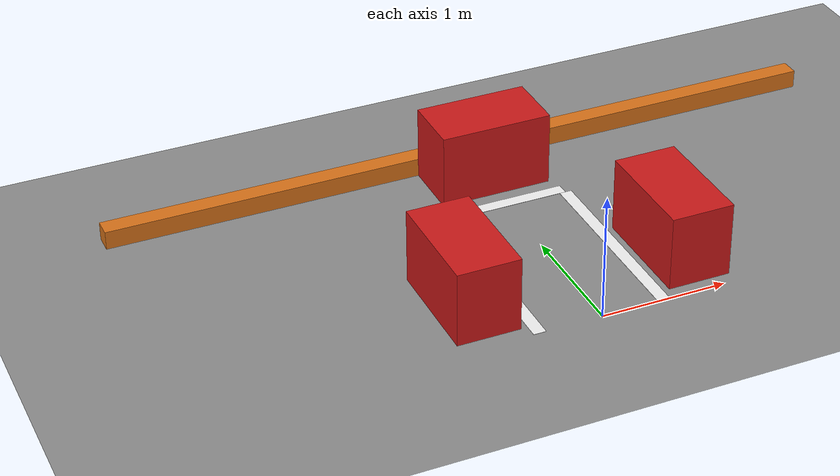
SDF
<?xml version="1.0" ?>
<sdf version="1.9">
  <world name="parking_lot">

    <physics name="1ms" type="ode">
      <max_step_size>0.001</max_step_size>
      <real_time_factor>1.0</real_time_factor>
    </physics>

    <!-- Gazebo Fortress (ignition-gazebo6) 플러그인 파일명/네임스페이스 -->
    <plugin filename="ignition-gazebo-physics-system" name="ignition::gazebo::systems::Physics"/>
    <plugin filename="ignition-gazebo-user-commands-system" name="ignition::gazebo::systems::UserCommands"/>
    <plugin filename="ignition-gazebo-scene-broadcaster-system" name="ignition::gazebo::systems::SceneBroadcaster"/>
    <plugin filename="ignition-gazebo-sensors-system" name="ignition::gazebo::systems::Sensors">
      <render_engine>ogre2</render_engine>
    </plugin>
    <plugin filename="ignition-gazebo-imu-system" name="ignition::gazebo::systems::Imu"/>
    <plugin filename="ignition-gazebo-navsat-system" name="ignition::gazebo::systems::NavSat"/>
    <plugin filename="ignition-gazebo-contact-system" name="ignition::gazebo::systems::Contact"/>

    <!-- 기본 카메라: 3D 원근 유지하면서, 참고 이미지처럼 보도블록(닫힌 쪽)이
         화면 위쪽에 오도록 진입로 뒤쪽 위에서 비스듬히 내려다보는 각도로 배치 -->
    <gui fullscreen="0">
      <camera name="user_camera">
        <pose>0 -4.6 3.4 1.5708 0.55 1.5708</pose>
      </camera>
    </gui>

    <light type="directional" name="sun">
      <!-- WSLg 소프트웨어 렌더링(llvmpipe/kms_swrast)에서 그림자 렌더링 비용이 커서
           GUI가 CPU를 계속 90%+ 씩 쓰며 사실상 응답이 멈춘 것처럼 보이는 문제가 있어
           꺼둔다 - 시각적으로만 손해, 시뮬레이션/제어 로직과는 무관. -->
      <cast_shadows>false</cast_shadows>
      <pose>0 0 10 0 0 0</pose>
      <diffuse>0.9 0.9 0.9 1</diffuse>
      <specular>0.2 0.2 0.2 1</specular>
      <direction>-0.4 0.2 -0.9</direction>
    </light>

    <model name="ground_plane">
      <static>true</static>
      <link name="link">
        <collision name="collision">
          <geometry><plane><normal>0 0 1</normal><size>14 12</size></plane></geometry>
          <surface><friction><ode><mu>0.9</mu><mu2>0.9</mu2></ode></friction></surface>
        </collision>
        <visual name="visual">
          <geometry><plane><normal>0 0 1</normal><size>14 12</size></plane></geometry>
          <material>
            <ambient>0.55 0.55 0.55 1</ambient>
            <diffuse>0.55 0.55 0.55 1</diffuse>
          </material>
        </visual>
      </link>
    </model>

    <!-- 슬롯 안쪽 경계(정지선) : 도면의 이중 가로줄, 폭 100mm. 대상 슬롯(1600mm)은
         여기까지이고, 물리적 충돌체는 없음(시각 표시 전용 - 로봇이 이 선을 살짝
         넘어도 안전하게 멈추도록 정지 목표는 이 선보다 안쪽에 두지 않는다). -->
    <model name="slot_back_boundary">
      <static>true</static>
      <pose>0 1.65 0.001 0 0 0</pose>
      <link name="link">
        <visual name="visual">
          <geometry><box><size>1.0 0.1 0.002</size></box></geometry>
          <material><ambient>0.95 0.95 0.95 1</ambient><diffuse>0.95 0.95 0.95 1</diffuse></material>
        </visual>
      </link>
    </model>

    <!-- 보도블록 (정지선에서 200mm 여유 + 안쪽 장애물 500mm 뒤, 오렌지색) -->
    <model name="curb">
      <static>true</static>
      <pose>0 2.375 0.075 0 0 0</pose>
      <link name="link">
        <collision name="collision">
          <geometry><box><size>6.0 0.15 0.15</size></box></geometry>
        </collision>
        <visual name="visual">
          <geometry><box><size>6.0 0.15 0.15</size></box></geometry>
          <material>
            <ambient>0.85 0.45 0.1 1</ambient>
            <diffuse>0.85 0.45 0.1 1</diffuse>
          </material>
        </visual>
      </link>
    </model>

    <!-- 주차 슬롯 좌측 차선 (흰색, 시각 표시 전용 / 충돌체 없음, 폭 100mm) -->
    <model name="line_left">
      <static>true</static>
      <pose>-0.5 0.8 0.001 0 0 0</pose>
      <link name="link">
        <visual name="visual">
          <geometry><box><size>0.1 1.6 0.002</size></box></geometry>
          <material><ambient>0.95 0.95 0.95 1</ambient><diffuse>0.95 0.95 0.95 1</diffuse></material>
        </visual>
      </link>
    </model>

    <!-- 주차 슬롯 우측 차선 (폭 100mm) -->
    <model name="line_right">
      <static>true</static>
      <pose>0.5 0.8 0.001 0 0 0</pose>
      <link name="link">
        <visual name="visual">
          <geometry><box><size>0.1 1.6 0.002</size></box></geometry>
          <material><ambient>0.95 0.95 0.95 1</ambient><diffuse>0.95 0.95 0.95 1</diffuse></material>
        </visual>
      </link>
    </model>

    <model name="parked_box_inner">
      <static>true</static>
      <pose>0 2.05 0.3 0 0 0</pose>
      <link name="link">
        <collision name="collision">
          <geometry><box><size>0.9 0.5 0.6</size></box></geometry>
        </collision>
        <visual name="visual">
          <geometry><box><size>0.9 0.5 0.6</size></box></geometry>
          <material><ambient>0.8 0.1 0.1 1</ambient><diffuse>0.8 0.1 0.1 1</diffuse></material>
        </visual>
      </link>
    </model>

    <!-- 장애물 2: 슬롯 좌측 옆 칸 이미 주차된 차량
         y=0.55 (span [0.1, 1.0]) : 후진주차장.png 우측 박스 아래 "100mm" 화살표대로
         입구(y=0)에서 100mm 띄워 배치(박스 깊이 900mm). 이전엔 도면을 안 보고
         임의로 150mm 띄워서(y=0.6) 규격과 안 맞았음. -->
    <model name="parked_box_left">
      <static>true</static>
      <pose>-0.85 0.55 0.3 0 0 0</pose>
      <link name="link">
        <collision name="collision">
          <geometry><box><size>0.5 0.9 0.6</size></box></geometry>
        </collision>
        <visual name="visual">
          <geometry><box><size>0.5 0.9 0.6</size></box></geometry>
          <material><ambient>0.8 0.1 0.1 1</ambient><diffuse>0.8 0.1 0.1 1</diffuse></material>
        </visual>
      </link>
    </model>

    <!-- 장애물 3: 슬롯 우측 옆 칸 이미 주차된 차량
         y=0.55 (span [0.1, 1.0]) : 좌측과 동일하게 입구에서 100mm 띄움(도면 우측
         박스 아래 "100mm" 화살표 그대로 반영) -->
    <model name="parked_box_right">
      <static>true</static>
      <pose>0.85 0.55 0.3 0 0 0</pose>
      <link name="link">
        <collision name="collision">
          <geometry><box><size>0.5 0.9 0.6</size></box></geometry>
        </collision>
        <visual name="visual">
          <geometry><box><size>0.5 0.9 0.6</size></box></geometry>
          <material><ambient>0.8 0.1 0.1 1</ambient><diffuse>0.8 0.1 0.1 1</diffuse></material>
        </visual>
      </link>
    </model>

  </world>
</sdf>
